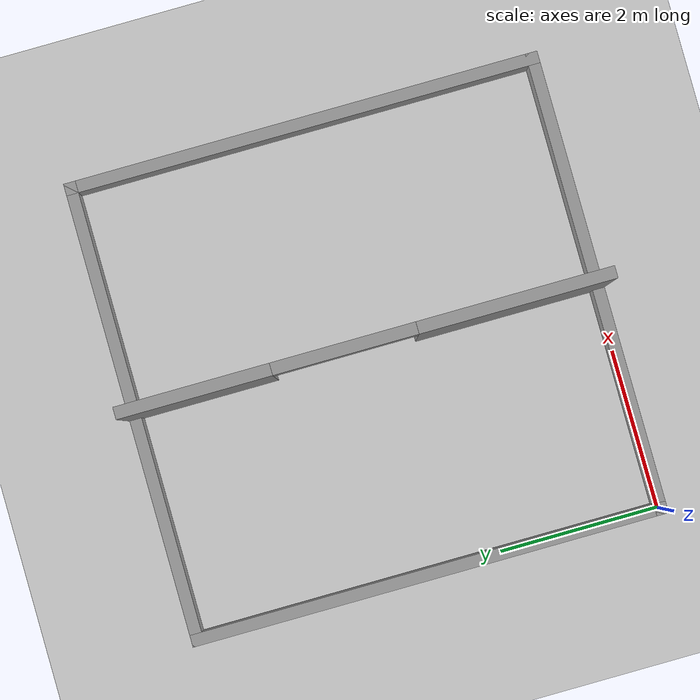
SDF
<sdf version="1.7">
 <world name="default">
  <light name="sun" type="directional">
   <pose>0 0 10 0 -0 0</pose>
   <diffuse>0.8 0.8 0.8 1</diffuse>
   <specular>0.2 0.2 0.2 1</specular>
   <attenuation>
    <range>1000</range>
    <constant>0.9</constant>
    <linear>0.01</linear>
    <quadratic>0.001</quadratic>
   </attenuation>
   <direction>-0.5 0.1 -0.9</direction>
   <spot><inner_angle>0</inner_angle><outer_angle>0</outer_angle><falloff>0</falloff></spot>
  </light>
  <model name="ground_plane">
   <static>1</static>
   <link name="link">
    <collision name="collision">
     <geometry><plane><normal>0 0 1</normal><size>100 100</size></plane></geometry>
     <surface>
      <contact><collide_bitmask>65535</collide_bitmask></contact>
      <friction><ode><mu>100</mu><mu2>50</mu2></ode></friction>
     </surface>
    </collision>
    <visual name="visual">
     <cast_shadows>0</cast_shadows>
     <geometry><plane><normal>0 0 1</normal><size>100 100</size></plane></geometry>
     <material>
      <script><uri>file://media/materials/scripts/gazebo.material</uri><name>Gazebo/Grey</name></script>
     </material>
    </visual>
   </link>
  </model>
  <gravity>0 0 -9.8</gravity>
  <magnetic_field>6e-06 2.3e-05 -4.2e-05</magnetic_field>
  <atmosphere type="adiabatic"/>
  <physics type="ode">
   <max_step_size>0.001</max_step_size>
   <real_time_factor>1</real_time_factor>
   <real_time_update_rate>1000</real_time_update_rate>
  </physics>
  <scene><ambient>0.4 0.4 0.4 1</ambient><background>0.7 0.7 0.7 1</background><shadows>1</shadows></scene>
  <spherical_coordinates>
   <surface_model>EARTH_WGS84</surface_model>
   <latitude_deg>0</latitude_deg>
   <longitude_deg>0</longitude_deg>
   <elevation>0</elevation>
   <heading_deg>0</heading_deg>
  </spherical_coordinates>
  <model name="door_traversal_model_2">
   <pose>2.85 2.925 0 0 -0 0</pose>
   <link name="Wall_13">
    <collision name="Wall_13_Collision">
     <geometry><box><size>3 0.15 0.5</size></box></geometry>
     <pose>0 0 0.25 0 -0 0</pose>
    </collision>
    <visual name="Wall_13_Visual">
     <pose>0 0 0.25 0 -0 0</pose>
     <geometry><box><size>3 0.15 0.5</size></box></geometry>
     <material>
      <script><uri>file://media/materials/scripts/gazebo.material</uri><name>Gazebo/Grey</name></script>
      <ambient>1 1 1 1</ambient>
     </material>
     <meta><layer>0</layer></meta>
    </visual>
    <pose>-1.425 -2.925 0 0 -0 0</pose>
   </link>
   <link name="Wall_17">
    <collision name="Wall_17_Collision">
     <geometry><box><size>6 0.15 0.5</size></box></geometry>
     <pose>0 0 0.25 0 -0 0</pose>
    </collision>
    <visual name="Wall_17_Visual">
     <pose>0 0 0.25 0 -0 0</pose>
     <geometry><box><size>6 0.15 0.5</size></box></geometry>
     <material>
      <script><uri>file://media/materials/scripts/gazebo.material</uri><name>Gazebo/Grey</name></script>
      <ambient>1 1 1 1</ambient>
     </material>
     <meta><layer>0</layer></meta>
    </visual>
    <pose>-2.85 0 0 0 -0 1.5708</pose>
   </link>
   <link name="Wall_18">
    <collision name="Wall_18_Collision">
     <geometry><box><size>3 0.15 0.5</size></box></geometry>
     <pose>0 0 0.25 0 -0 0</pose>
    </collision>
    <visual name="Wall_18_Visual">
     <pose>0 0 0.25 0 -0 0</pose>
     <geometry><box><size>3 0.15 0.5</size></box></geometry>
     <material>
      <script><uri>file://media/materials/scripts/gazebo.material</uri><name>Gazebo/Grey</name></script>
      <ambient>1 1 1 1</ambient>
     </material>
     <meta><layer>0</layer></meta>
    </visual>
    <pose>-1.425 2.925 0 0 -0 0</pose>
   </link>
   <link name="Wall_19">
    <pose>0 0 0 0 -0 -1.5708</pose>
    <visual name="Wall_19_Visual_0">
     <pose>-2.065 0 1.25 0 -0 0</pose>
     <geometry><box><size>1.87 0.15 2.5</size></box></geometry>
     <material>
      <script><uri>file://media/materials/scripts/gazebo.material</uri><name>Gazebo/Grey</name></script>
      <ambient>1 1 1 1</ambient>
     </material>
     <meta><layer>0</layer></meta>
    </visual>
    <collision name="Wall_19_Collision_0">
     <geometry><box><size>1.87 0.15 2.5</size></box></geometry>
     <pose>-2.065 0 1.25 0 -0 0</pose>
    </collision>
    <visual name="Wall_19_Visual_1">
     <pose>1.81 0 1.25 0 -0 0</pose>
     <geometry><box><size>2.38 0.15 2.5</size></box></geometry>
     <material>
      <script><uri>file://media/materials/scripts/gazebo.material</uri><name>Gazebo/Grey</name></script>
      <ambient>1 1 1 1</ambient>
     </material>
     <meta><layer>0</layer></meta>
    </visual>
    <collision name="Wall_19_Collision_1">
     <geometry><box><size>2.38 0.15 2.5</size></box></geometry>
     <pose>1.81 0 1.25 0 -0 0</pose>
    </collision>
    <visual name="Wall_19_Visual_2">
     <pose>-0.255 0 2.25 0 -0 0</pose>
     <geometry><box><size>1.75 0.15 0.5</size></box></geometry>
     <material>
      <script><uri>file://media/materials/scripts/gazebo.material</uri><name>Gazebo/Grey</name></script>
      <ambient>1 1 1 1</ambient>
     </material>
     <meta><layer>0</layer></meta>
    </visual>
    <collision name="Wall_19_Collision_2">
     <geometry><box><size>1.75 0.15 0.5</size></box></geometry>
     <pose>-0.255 0 2.25 0 -0 0</pose>
    </collision>
   </link>
   <link name="Wall_20">
    <collision name="Wall_20_Collision">
     <geometry><box><size>3 0.15 0.5</size></box></geometry>
     <pose>0 0 0.25 0 -0 0</pose>
    </collision>
    <visual name="Wall_20_Visual">
     <pose>0 0 0.25 0 -0 0</pose>
     <geometry><box><size>3 0.15 0.5</size></box></geometry>
     <material>
      <script><uri>file://media/materials/scripts/gazebo.material</uri><name>Gazebo/Grey</name></script>
      <ambient>1 1 1 1</ambient>
     </material>
     <meta><layer>0</layer></meta>
    </visual>
    <pose>1.425 -2.925 0 0 -0 0</pose>
   </link>
   <link name="Wall_21">
    <collision name="Wall_21_Collision">
     <geometry><box><size>6 0.15 0.5</size></box></geometry>
     <pose>0 0 0.25 0 -0 0</pose>
    </collision>
    <visual name="Wall_21_Visual">
     <pose>0 0 0.25 0 -0 0</pose>
     <geometry><box><size>6 0.15 0.5</size></box></geometry>
     <material>
      <script><uri>file://media/materials/scripts/gazebo.material</uri><name>Gazebo/Grey</name></script>
      <ambient>1 1 1 1</ambient>
     </material>
     <meta><layer>0</layer></meta>
    </visual>
    <pose>2.85 0 0 0 -0 1.5708</pose>
   </link>
   <link name="Wall_22">
    <collision name="Wall_22_Collision">
     <geometry><box><size>3 0.15 0.5</size></box></geometry>
     <pose>0 0 0.25 0 -0 0</pose>
    </collision>
    <visual name="Wall_22_Visual">
     <pose>0 0 0.25 0 -0 0</pose>
     <geometry><box><size>3 0.15 0.5</size></box></geometry>
     <material>
      <script><uri>file://media/materials/scripts/gazebo.material</uri><name>Gazebo/Grey</name></script>
      <ambient>1 1 1 1</ambient>
     </material>
     <meta><layer>0</layer></meta>
    </visual>
    <pose>1.425 2.925 0 0 -0 3.14159</pose>
   </link>
   <static>1</static>
  </model>
 </world>
</sdf>
